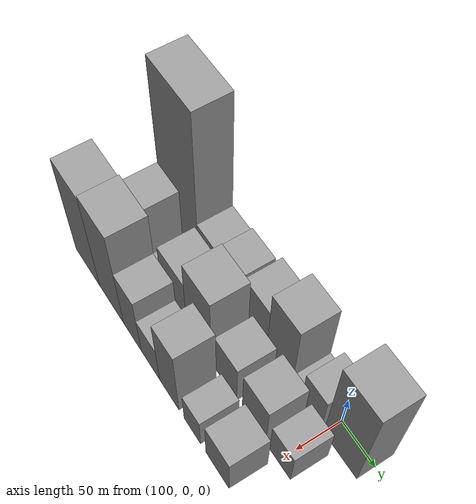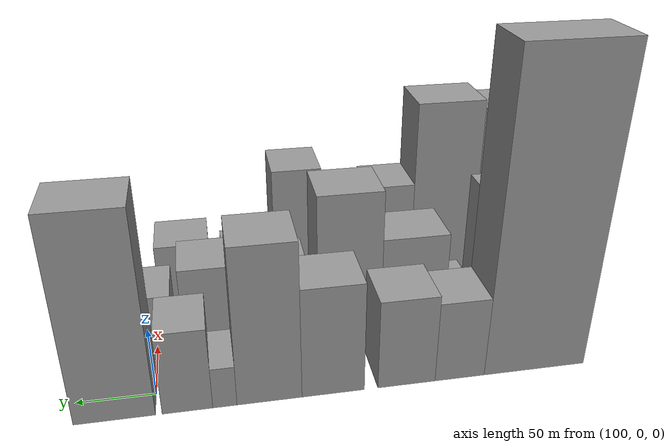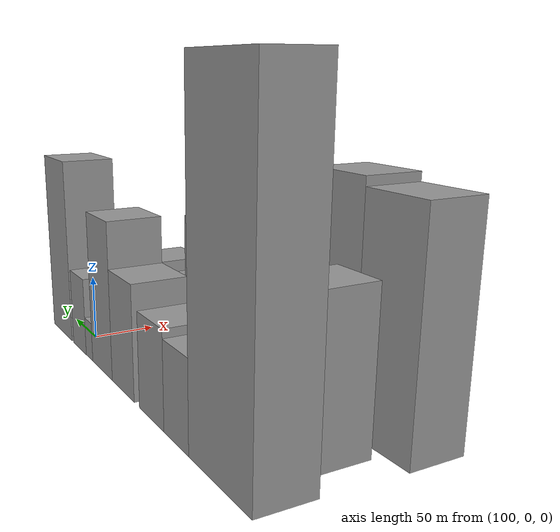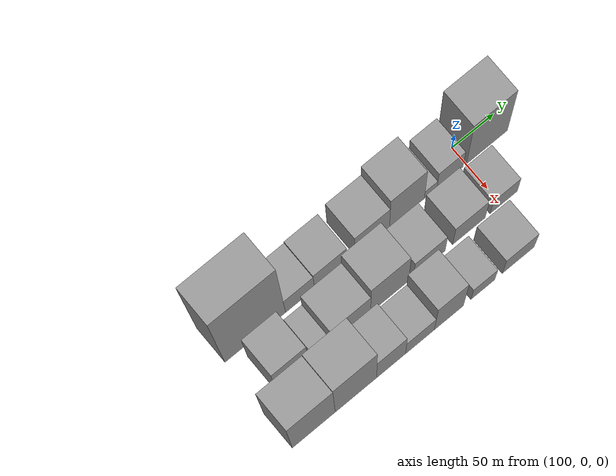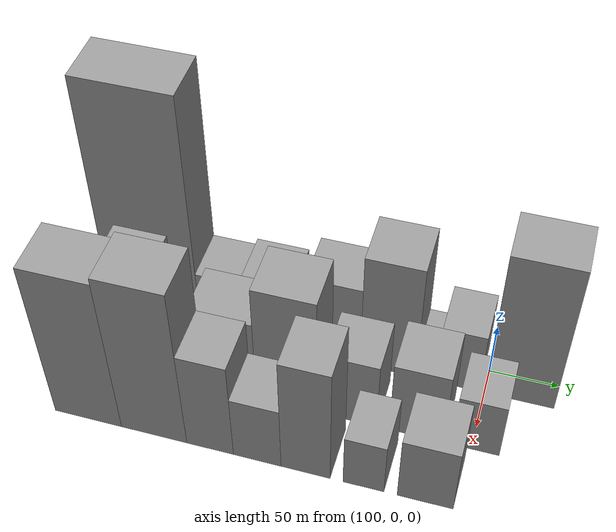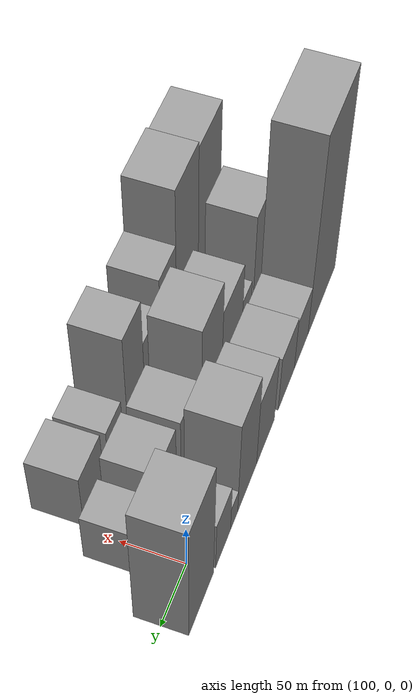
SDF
<sdf version="1.6">
 <world name="default">
  <model name="building_8">
   <static>1</static>
   <pose>100.0000 -248.7638 0 0.000000 0.000000 0.000000</pose>
   <link name="link">
    <pose>0 0 111.00 0 0 0</pose>
    <collision name="collision"><geometry><box><size>40.0000 70.5492 222.0000</size></box></geometry></collision>
    <visual name="visual">
     <cast_shadows>0</cast_shadows>
     <geometry><box><size>40.0000 70.5492 222.0000</size></box></geometry>
     <material>
      <script>
       <uri>model://grey_wall/materials/scripts</uri>
       <uri>model://grey_wall/materials/textures</uri>
       <name>vrc/grey_wall</name>
      </script>
     </material>
    </visual>
   </link>
  </model>
  <model name="building_9">
   <static>1</static>
   <pose>100.0000 -196.5476 0 0.000000 0.000000 0.000000</pose>
   <link name="link">
    <pose>0 0 30.00 0 0 0</pose>
    <collision name="collision"><geometry><box><size>40.0000 33.8831 60.0000</size></box></geometry></collision>
    <visual name="visual">
     <cast_shadows>0</cast_shadows>
     <geometry><box><size>40.0000 33.8831 60.0000</size></box></geometry>
     <material>
      <script>
       <uri>model://grey_wall/materials/scripts</uri>
       <uri>model://grey_wall/materials/textures</uri>
       <name>vrc/grey_wall</name>
      </script>
     </material>
    </visual>
   </link>
  </model>
  <model name="building_10">
   <static>1</static>
   <pose>100.0000 -160.3674 0 0.000000 0.000000 0.000000</pose>
   <link name="link">
    <pose>0 0 33.00 0 0 0</pose>
    <collision name="collision"><geometry><box><size>40.0000 38.4773 66.0000</size></box></geometry></collision>
    <visual name="visual">
     <cast_shadows>0</cast_shadows>
     <geometry><box><size>40.0000 38.4773 66.0000</size></box></geometry>
     <material>
      <script>
       <uri>model://grey_wall/materials/scripts</uri>
       <uri>model://grey_wall/materials/textures</uri>
       <name>vrc/grey_wall</name>
      </script>
     </material>
    </visual>
   </link>
  </model>
  <model name="building_11">
   <static>1</static>
   <pose>100.0000 -111.7872 0 0.000000 0.000000 0.000000</pose>
   <link name="link">
    <pose>0 0 40.50 0 0 0</pose>
    <collision name="collision"><geometry><box><size>40.0000 40.6831 81.0000</size></box></geometry></collision>
    <visual name="visual">
     <cast_shadows>0</cast_shadows>
     <geometry><box><size>40.0000 40.6831 81.0000</size></box></geometry>
     <material>
      <script>
       <uri>model://grey_wall/materials/scripts</uri>
       <uri>model://grey_wall/materials/textures</uri>
       <name>vrc/grey_wall</name>
      </script>
     </material>
    </visual>
   </link>
  </model>
  <model name="building_12">
   <static>1</static>
   <pose>100.0000 -70.7702 0 0.000000 0.000000 0.000000</pose>
   <link name="link">
    <pose>0 0 57.00 0 0 0</pose>
    <collision name="collision"><geometry><box><size>40.0000 41.3510 114.0000</size></box></geometry></collision>
    <visual name="visual">
     <cast_shadows>0</cast_shadows>
     <geometry><box><size>40.0000 41.3510 114.0000</size></box></geometry>
     <material>
      <script>
       <uri>model://grey_wall/materials/scripts</uri>
       <uri>model://grey_wall/materials/textures</uri>
       <name>vrc/grey_wall</name>
      </script>
     </material>
    </visual>
   </link>
  </model>
  <model name="building_13">
   <static>1</static>
   <pose>100.0000 -42.5535 0 0.000000 0.000000 0.000000</pose>
   <link name="link">
    <pose>0 0 15.00 0 0 0</pose>
    <collision name="collision"><geometry><box><size>40.0000 15.0822 30.0000</size></box></geometry></collision>
    <visual name="visual">
     <cast_shadows>0</cast_shadows>
     <geometry><box><size>40.0000 15.0822 30.0000</size></box></geometry>
     <material>
      <script>
       <uri>model://grey_wall/materials/scripts</uri>
       <uri>model://grey_wall/materials/textures</uri>
       <name>vrc/grey_wall</name>
      </script>
     </material>
    </visual>
   </link>
  </model>
  <model name="building_14">
   <static>1</static>
   <pose>100.0000 -19.4573 0 0.000000 0.000000 0.000000</pose>
   <link name="link">
    <pose>0 0 30.00 0 0 0</pose>
    <collision name="collision"><geometry><box><size>40.0000 31.1103 60.0000</size></box></geometry></collision>
    <visual name="visual">
     <cast_shadows>0</cast_shadows>
     <geometry><box><size>40.0000 31.1103 60.0000</size></box></geometry>
     <material>
      <script>
       <uri>model://grey_wall/materials/scripts</uri>
       <uri>model://grey_wall/materials/textures</uri>
       <name>vrc/grey_wall</name>
      </script>
     </material>
    </visual>
   </link>
  </model>
  <model name="building_15">
   <static>1</static>
   <pose>100.0000 24.7124 0 0.000000 0.000000 0.000000</pose>
   <link name="link">
    <pose>0 0 72.00 0 0 0</pose>
    <collision name="collision"><geometry><box><size>40.0000 49.2291 144.0000</size></box></geometry></collision>
    <visual name="visual">
     <cast_shadows>0</cast_shadows>
     <geometry><box><size>40.0000 49.2291 144.0000</size></box></geometry>
     <material>
      <script>
       <uri>model://grey_wall/materials/scripts</uri>
       <uri>model://grey_wall/materials/textures</uri>
       <name>vrc/grey_wall</name>
      </script>
     </material>
    </visual>
   </link>
  </model>
  <model name="building_40">
   <static>1</static>
   <pose>149.0000 -245.9102 0 0.000000 0.000000 0.000000</pose>
   <link name="link">
    <pose>0 0 52.50 0 0 0</pose>
    <collision name="collision"><geometry><box><size>40.0000 38.5267 105.0000</size></box></geometry></collision>
    <visual name="visual">
     <cast_shadows>0</cast_shadows>
     <geometry><box><size>40.0000 38.5267 105.0000</size></box></geometry>
     <material>
      <script>
       <uri>model://grey_wall/materials/scripts</uri>
       <uri>model://grey_wall/materials/textures</uri>
       <name>vrc/grey_wall</name>
      </script>
     </material>
    </visual>
   </link>
  </model>
  <model name="building_41">
   <static>1</static>
   <pose>149.0000 -211.1616 0 0.000000 0.000000 0.000000</pose>
   <link name="link">
    <pose>0 0 18.00 0 0 0</pose>
    <collision name="collision"><geometry><box><size>40.0000 20.9706 36.0000</size></box></geometry></collision>
    <visual name="visual">
     <cast_shadows>0</cast_shadows>
     <geometry><box><size>40.0000 20.9706 36.0000</size></box></geometry>
     <material>
      <script>
       <uri>model://grey_wall/materials/scripts</uri>
       <uri>model://grey_wall/materials/textures</uri>
       <name>vrc/grey_wall</name>
      </script>
     </material>
    </visual>
   </link>
  </model>
  <model name="building_42">
   <static>1</static>
   <pose>149.0000 -177.5878 0 0.000000 0.000000 0.000000</pose>
   <link name="link">
    <pose>0 0 40.50 0 0 0</pose>
    <collision name="collision"><geometry><box><size>40.0000 46.1771 81.0000</size></box></geometry></collision>
    <visual name="visual">
     <cast_shadows>0</cast_shadows>
     <geometry><box><size>40.0000 46.1771 81.0000</size></box></geometry>
     <material>
      <script>
       <uri>model://grey_wall/materials/scripts</uri>
       <uri>model://grey_wall/materials/textures</uri>
       <name>vrc/grey_wall</name>
      </script>
     </material>
    </visual>
   </link>
  </model>
  <model name="building_43">
   <static>1</static>
   <pose>149.0000 -132.2353 0 0.000000 0.000000 0.000000</pose>
   <link name="link">
    <pose>0 0 58.50 0 0 0</pose>
    <collision name="collision"><geometry><box><size>40.0000 44.5278 117.0000</size></box></geometry></collision>
    <visual name="visual">
     <cast_shadows>0</cast_shadows>
     <geometry><box><size>40.0000 44.5278 117.0000</size></box></geometry>
     <material>
      <script>
       <uri>model://grey_wall/materials/scripts</uri>
       <uri>model://grey_wall/materials/textures</uri>
       <name>vrc/grey_wall</name>
      </script>
     </material>
    </visual>
   </link>
  </model>
  <model name="building_44">
   <static>1</static>
   <pose>149.0000 -85.3971 0 0.000000 0.000000 0.000000</pose>
   <link name="link">
    <pose>0 0 33.00 0 0 0</pose>
    <collision name="collision"><geometry><box><size>40.0000 37.1487 66.0000</size></box></geometry></collision>
    <visual name="visual">
     <cast_shadows>0</cast_shadows>
     <geometry><box><size>40.0000 37.1487 66.0000</size></box></geometry>
     <material>
      <script>
       <uri>model://grey_wall/materials/scripts</uri>
       <uri>model://grey_wall/materials/textures</uri>
       <name>vrc/grey_wall</name>
      </script>
     </material>
    </visual>
   </link>
  </model>
  <model name="building_45">
   <static>1</static>
   <pose>149.0000 -38.5079 0 0.000000 0.000000 0.000000</pose>
   <link name="link">
    <pose>0 0 36.00 0 0 0</pose>
    <collision name="collision"><geometry><box><size>40.0000 38.6296 72.0000</size></box></geometry></collision>
    <visual name="visual">
     <cast_shadows>0</cast_shadows>
     <geometry><box><size>40.0000 38.6296 72.0000</size></box></geometry>
     <material>
      <script>
       <uri>model://grey_wall/materials/scripts</uri>
       <uri>model://grey_wall/materials/textures</uri>
       <name>vrc/grey_wall</name>
      </script>
     </material>
    </visual>
   </link>
  </model>
  <model name="building_46">
   <static>1</static>
   <pose>149.0000 2.9643 0 0.000000 0.000000 0.000000</pose>
   <link name="link">
    <pose>0 0 27.00 0 0 0</pose>
    <collision name="collision"><geometry><box><size>40.0000 32.3148 54.0000</size></box></geometry></collision>
    <visual name="visual">
     <cast_shadows>0</cast_shadows>
     <geometry><box><size>40.0000 32.3148 54.0000</size></box></geometry>
     <material>
      <script>
       <uri>model://grey_wall/materials/scripts</uri>
       <uri>model://grey_wall/materials/textures</uri>
       <name>vrc/grey_wall</name>
      </script>
     </material>
    </visual>
   </link>
  </model>
  <model name="building_66">
   <static>1</static>
   <pose>198.0000 -261.7355 0 0.000000 0.000000 0.000000</pose>
   <link name="link">
    <pose>0 0 75.00 0 0 0</pose>
    <collision name="collision"><geometry><box><size>40.0000 49.8196 150.0000</size></box></geometry></collision>
    <visual name="visual">
     <cast_shadows>0</cast_shadows>
     <geometry><box><size>40.0000 49.8196 150.0000</size></box></geometry>
     <material>
      <script>
       <uri>model://grey_wall/materials/scripts</uri>
       <uri>model://grey_wall/materials/textures</uri>
       <name>vrc/grey_wall</name>
      </script>
     </material>
    </visual>
   </link>
  </model>
  <model name="building_67">
   <static>1</static>
   <pose>198.0000 -212.7564 0 0.000000 0.000000 0.000000</pose>
   <link name="link">
    <pose>0 0 78.00 0 0 0</pose>
    <collision name="collision"><geometry><box><size>40.0000 48.1387 156.0000</size></box></geometry></collision>
    <visual name="visual">
     <cast_shadows>0</cast_shadows>
     <geometry><box><size>40.0000 48.1387 156.0000</size></box></geometry>
     <material>
      <script>
       <uri>model://grey_wall/materials/scripts</uri>
       <uri>model://grey_wall/materials/textures</uri>
       <name>vrc/grey_wall</name>
      </script>
     </material>
    </visual>
   </link>
  </model>
  <model name="building_68">
   <static>1</static>
   <pose>198.0000 -171.7990 0 0.000000 0.000000 0.000000</pose>
   <link name="link">
    <pose>0 0 48.00 0 0 0</pose>
    <collision name="collision"><geometry><box><size>40.0000 33.7761 96.0000</size></box></geometry></collision>
    <visual name="visual">
     <cast_shadows>0</cast_shadows>
     <geometry><box><size>40.0000 33.7761 96.0000</size></box></geometry>
     <material>
      <script>
       <uri>model://grey_wall/materials/scripts</uri>
       <uri>model://grey_wall/materials/textures</uri>
       <name>vrc/grey_wall</name>
      </script>
     </material>
    </visual>
   </link>
  </model>
  <model name="building_69">
   <static>1</static>
   <pose>198.0000 -137.9906 0 0.000000 0.000000 0.000000</pose>
   <link name="link">
    <pose>0 0 31.50 0 0 0</pose>
    <collision name="collision"><geometry><box><size>40.0000 33.8408 63.0000</size></box></geometry></collision>
    <visual name="visual">
     <cast_shadows>0</cast_shadows>
     <geometry><box><size>40.0000 33.8408 63.0000</size></box></geometry>
     <material>
      <script>
       <uri>model://grey_wall/materials/scripts</uri>
       <uri>model://grey_wall/materials/textures</uri>
       <name>vrc/grey_wall</name>
      </script>
     </material>
    </visual>
   </link>
  </model>
  <model name="building_70">
   <static>1</static>
   <pose>198.0000 -103.8891 0 0.000000 0.000000 0.000000</pose>
   <link name="link">
    <pose>0 0 57.00 0 0 0</pose>
    <collision name="collision"><geometry><box><size>40.0000 34.3621 114.0000</size></box></geometry></collision>
    <visual name="visual">
     <cast_shadows>0</cast_shadows>
     <geometry><box><size>40.0000 34.3621 114.0000</size></box></geometry>
     <material>
      <script>
       <uri>model://grey_wall/materials/scripts</uri>
       <uri>model://grey_wall/materials/textures</uri>
       <name>vrc/grey_wall</name>
      </script>
     </material>
    </visual>
   </link>
  </model>
  <model name="building_71">
   <static>1</static>
   <pose>198.0000 -63.6289 0 0.000000 0.000000 0.000000</pose>
   <link name="link">
    <pose>0 0 25.50 0 0 0</pose>
    <collision name="collision"><geometry><box><size>40.0000 28.1582 51.0000</size></box></geometry></collision>
    <visual name="visual">
     <cast_shadows>0</cast_shadows>
     <geometry><box><size>40.0000 28.1582 51.0000</size></box></geometry>
     <material>
      <script>
       <uri>model://grey_wall/materials/scripts</uri>
       <uri>model://grey_wall/materials/textures</uri>
       <name>vrc/grey_wall</name>
      </script>
     </material>
    </visual>
   </link>
  </model>
  <model name="building_72">
   <static>1</static>
   <pose>198.0000 -21.6687 0 0.000000 0.000000 0.000000</pose>
   <link name="link">
    <pose>0 0 31.50 0 0 0</pose>
    <collision name="collision"><geometry><box><size>40.0000 37.7622 63.0000</size></box></geometry></collision>
    <visual name="visual">
     <cast_shadows>0</cast_shadows>
     <geometry><box><size>40.0000 37.7622 63.0000</size></box></geometry>
     <material>
      <script>
       <uri>model://grey_wall/materials/scripts</uri>
       <uri>model://grey_wall/materials/textures</uri>
       <name>vrc/grey_wall</name>
      </script>
     </material>
    </visual>
   </link>
  </model>
 </world>
</sdf>
